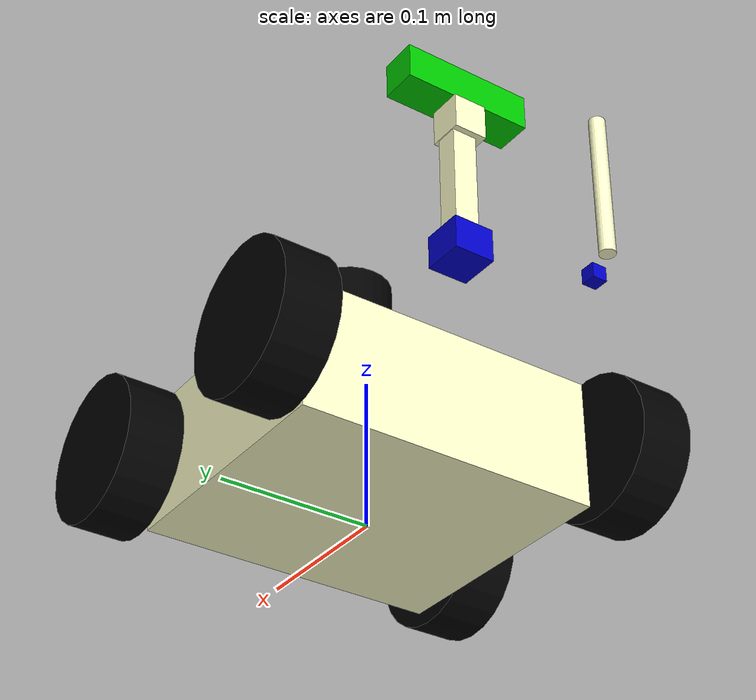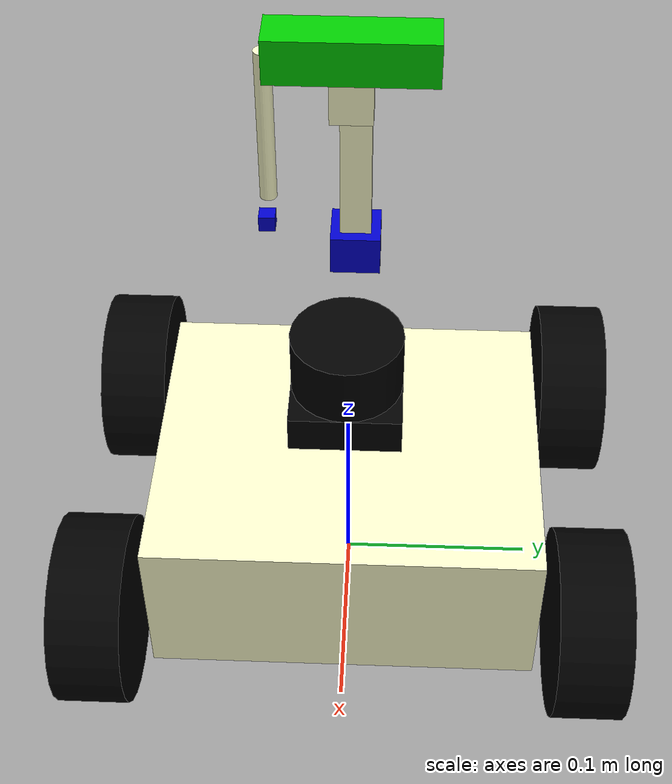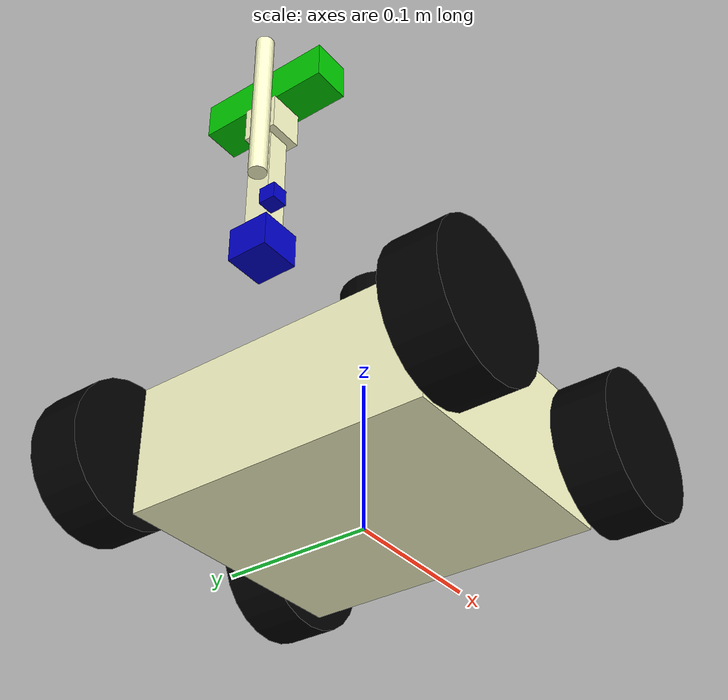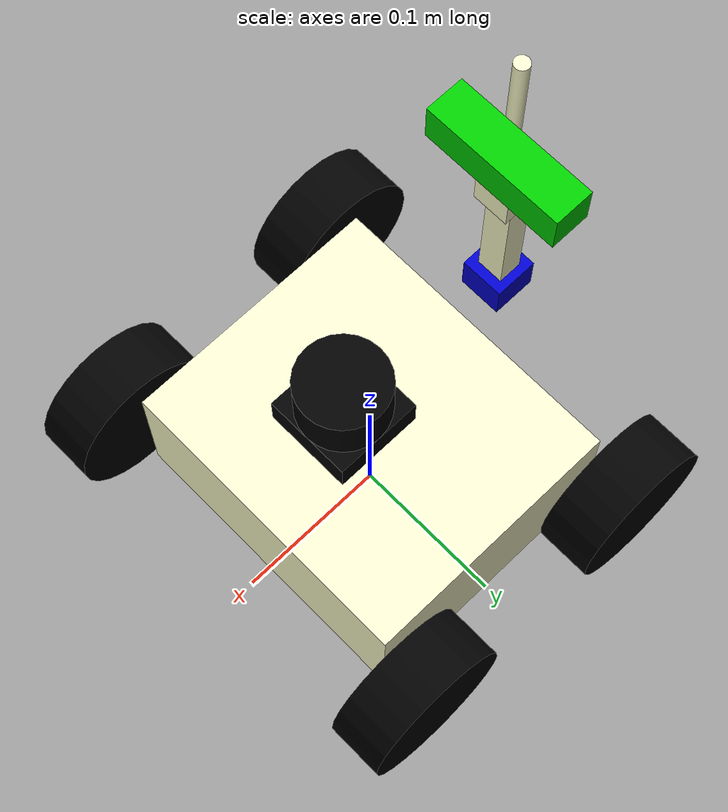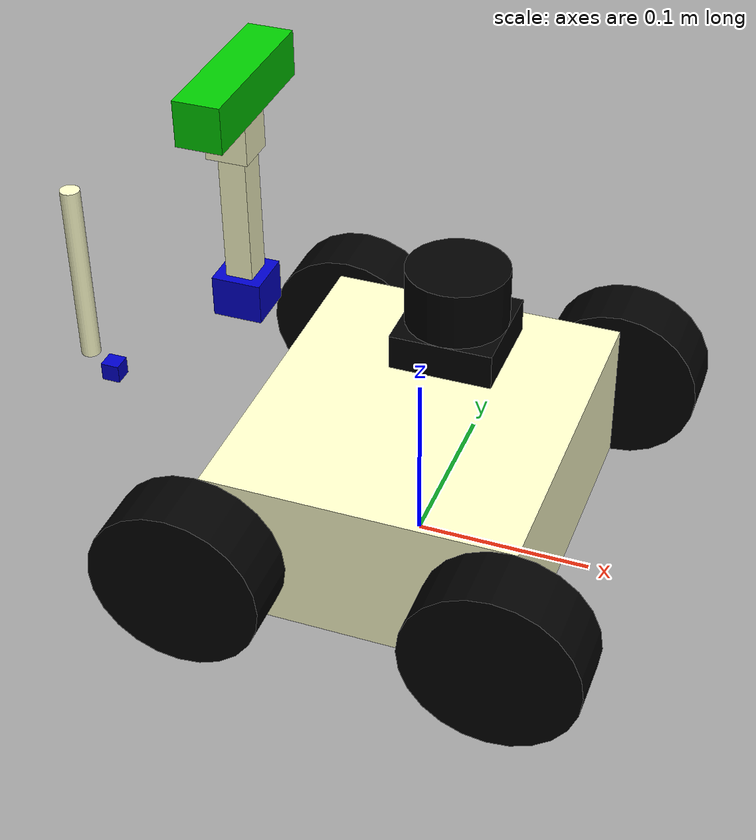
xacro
<?xml version="1.0" ?>
<!-- Modified URDF for rosbot_xl with corrected ros2_control for differential drive -->
<robot name="rosbot_xl">
  <!-- Define material colors -->
  <material name="blue">
    <color rgba="0 0 0.8 1"/>
  </material>
  <material name="white">
    <color rgba="1 1 0.8 1"/>
  </material>
  <material name="red">
    <color rgba="0.8 0 0 1"/>
  </material>
  <material name="green">
    <color rgba="0 0.8 0 1"/>
  </material>
  <material name="gray">
    <color rgba="0.5 0.5 0.5 1"/>
  </material>
  <material name="black">
    <color rgba="0 0 0 1"/>
  </material>

  <!-- Base link and body link definition -->
  <link name="base_footprint"/>
  <joint name="base_to_body_joint" type="fixed">
    <origin rpy="0.0 0.0 0.0" xyz="0.0 0.0 0.048"/>
    <parent link="base_footprint"/>
    <child link="base_link"/>
  </joint>

  <link name="base_link">
    <visual>
      <geometry>
        <box size="0.1725 0.2011 0.0855"/>
      </geometry>
      <material name="white"/>
      <origin rpy="0.0 0.0 0.0" xyz="0.0 0.0 0.0"/>
    </visual>
    <collision>
      <geometry>
        <box size="0.1725 0.2011 0.0855"/>
      </geometry>
      <origin rpy="0.0 0.0 0.0" xyz="0.0 0.0 0.0"/>
    </collision>
    <inertial>
      <mass value="3.5"/>
      <origin rpy="0.0 0.0 0.0" xyz="0.0 0.0 0.0358"/>
      <inertia ixx="0.01393" ixy="-0.000020968097" ixz="0.000010399694" iyy="0.01081" iyz="0.000059372953" izz="0.02048"/>
    </inertial>
  </link>

  <link name="cover_link"/>
  <joint name="body_to_cover_joint" type="fixed">
    <origin rpy="0.0 0.0 0.0" xyz="0.0 0.0 0.08345"/>
    <parent link="base_link"/>
    <child link="cover_link"/>
  </joint>

  <link name="imu_link"/>
  <joint name="body_to_imu_joint" type="fixed">
    <origin rpy="3.14159 0.0 0.0" xyz="-0.1369 -0.0419 0.0370"/>
    <parent link="base_link"/>
    <child link="imu_link"/>
  </joint>

  <!-- IMU Gazebo Plugin -->
  <gazebo reference="imu_link">
    <sensor name="imu_sensor" type="imu">
      <always_on>true</always_on>
      <update_rate>100.0</update_rate>
      <topic>imu/data</topic>
      <ignition_frame_id>imu_link</ignition_frame_id>
      <imu>
        <noise>
          <type>gaussian</type>
          <rate>
            <mean>0.0</mean>
            <stddev>0.0002</stddev>
          </rate>
          <accel>
            <mean>0.0</mean>
            <stddev>0.002</stddev>
          </accel>
        </noise>
      </imu>
    </sensor>
  </gazebo>

  <link name="fl_wheel_link">
    <visual>
      <geometry>
        <cylinder length="0.036" radius="0.048"/>
      </geometry>
      <material name="black"/>
      <origin rpy="1.5707963267948966 0.0 0.0" xyz="0.0 0.0 0.0"/>
    </visual>
    <collision>
      <geometry>
        <cylinder length="0.036" radius="0.048"/>
      </geometry>
      <origin rpy="1.5707963267948966 0.0 0.0" xyz="0.0 0.0 0.0"/>
    </collision>
    <inertial>
      <mass value="0.051"/>
      <inertia ixx="5.0587413e-05" ixy="0.0" ixz="0.0" iyy="8.5933192e-05" iyz="0.0" izz="5.0587829e-05"/>
    </inertial>
  </link>
  <joint name="fl_wheel_joint" type="continuous">
    <parent link="base_link"/>
    <child link="fl_wheel_link"/>
    <origin rpy="0.0 0.0 0.0" xyz="0.085 0.124 0.0"/>
    <axis xyz="0.0 1.0 0.0"/>
    <limit effort="1.5" velocity="30.0"/>
    <dynamics damping="0.001" friction="0.001"/>
  </joint>

  <link name="fr_wheel_link">
    <visual>
      <geometry>
        <cylinder length="0.036" radius="0.048"/>
      </geometry>
      <material name="black"/>
      <origin rpy="1.5707963267948966 0.0 0.0" xyz="0.0 0.0 0.0"/>
    </visual>
    <collision>
      <geometry>
        <cylinder length="0.036" radius="0.048"/>
      </geometry>
      <origin rpy="1.5707963267948966 0.0 0.0" xyz="0.0 0.0 0.0"/>
    </collision>
    <inertial>
      <mass value="0.051"/>
      <inertia ixx="5.0587413e-05" ixy="0.0" ixz="0.0" iyy="8.5933192e-05" iyz="0.0" izz="5.0587829e-05"/>
    </inertial>
  </link>
  <joint name="fr_wheel_joint" type="continuous">
    <parent link="base_link"/>
    <child link="fr_wheel_link"/>
    <origin rpy="0.0 0.0 0.0" xyz="0.085 -0.124 0.0"/>
    <axis xyz="0.0 1.0 0.0"/>
    <limit effort="1.5" velocity="30.0"/>
    <dynamics damping="0.001" friction="0.001"/>
  </joint>

  <link name="rl_wheel_link">
    <visual>
      <geometry>
        <cylinder length="0.036" radius="0.048"/>
      </geometry>
      <material name="black"/>
      <origin rpy="1.5707963267948966 0.0 0.0" xyz="0.0 0.0 0.0"/>
    </visual>
    <collision>
      <geometry>
        <cylinder length="0.036" radius="0.048"/>
      </geometry>
      <origin rpy="1.5707963267948966 0.0 0.0" xyz="0.0 0.0 0.0"/>
    </collision>
    <inertial>
      <mass value="0.051"/>
      <inertia ixx="5.0587413e-05" ixy="0.0" ixz="0.0" iyy="8.5933192e-05" iyz="0.0" izz="5.0587829e-05"/>
    </inertial>
  </link>
  <joint name="rl_wheel_joint" type="continuous">
    <parent link="base_link"/>
    <child link="rl_wheel_link"/>
    <origin rpy="0.0 0.0 0.0" xyz="-0.085 0.124 0.0"/>
    <axis xyz="0.0 1.0 0.0"/>
    <limit effort="1.5" velocity="30.0"/>
    <dynamics damping="0.001" friction="0.001"/>
  </joint>

  <link name="rr_wheel_link">
    <visual>
      <geometry>
        <cylinder length="0.036" radius="0.048"/>
      </geometry>
      <material name="black"/>
      <origin rpy="1.5707963267948966 0.0 0.0" xyz="0.0 0.0 0.0"/>
    </visual>
    <collision>
      <geometry>
        <cylinder length="0.036" radius="0.048"/>
      </geometry>
      <origin rpy="1.5707963267948966 0.0 0.0" xyz="0.0 0.0 0.0"/>
    </collision>
    <inertial>
      <mass value="0.051"/>
      <inertia ixx="5.0587413e-05" ixy="0.0" ixz="0.0" iyy="8.5933192e-05" iyz="0.0" izz="5.0587829e-05"/>
    </inertial>
  </link>
  <joint name="rr_wheel_joint" type="continuous">
    <parent link="base_link"/>
    <child link="rr_wheel_link"/>
    <origin rpy="0.0 0.0 0.0" xyz="-0.085 -0.124 0.0"/>
    <axis xyz="0.0 1.0 0.0"/>
    <limit effort="1.5" velocity="30.0"/>
    <dynamics damping="0.001" friction="0.001"/>
  </joint>

  <!-- ROS2 Control for Wheels -->
  <ros2_control name="IgnitionSystem" type="system">
    <hardware>
      <plugin>gz_ros2_control/GazeboSimSystem</plugin>
    </hardware>
    <joint name="fl_wheel_joint">
      <command_interface name="velocity">
        <param name="min">-20</param>
        <param name="max">20</param>
      </command_interface>
      <state_interface name="position"/>
      <state_interface name="velocity"/>
    </joint>
    <joint name="fr_wheel_joint">
      <command_interface name="velocity">
        <param name="min">-20</param>
        <param name="max">20</param>
      </command_interface>
      <state_interface name="position"/>
      <state_interface name="velocity"/>
    </joint>
    <joint name="rl_wheel_joint">
      <command_interface name="velocity">
        <param name="min">-20</param>
        <param name="max">20</param>
      </command_interface>
      <state_interface name="position"/>
      <state_interface name="velocity"/>
    </joint>
    <joint name="rr_wheel_joint">
      <command_interface name="velocity">
        <param name="min">-20</param>
        <param name="max">20</param>
      </command_interface>
      <state_interface name="position"/>
      <state_interface name="velocity"/>
    </joint>
  </ros2_control>

  <gazebo>
    <plugin filename="gz_ros2_control-system" name="gz_ros2_control::GazeboSimROS2ControlPlugin">
      <parameters>$(find testbot)/config/4w_diff_drive_controller_velocity.yaml</parameters>
    </plugin>
  </gazebo>

  <joint name="body_to_antenna_connector_joint" type="fixed">
    <origin rpy="0.0 0.0 0.0" xyz="-0.155 -0.055 0.065"/>
    <parent link="base_link"/>
    <child link="antenna_connector_link"/>
  </joint>
  <link name="antenna_connector_link">
    <visual>
      <geometry>
        <box size="0.01 0.01 0.01"/>
      </geometry>
      <material name="blue"/>
      <origin rpy="0.0 0.0 0.0" xyz="0.0 0.0 0.0"/>
    </visual>
  </link>
  <joint name="antenna_connector_to_antenna_joint" type="fixed">
    <origin rpy="0.0 0.0 0.0" xyz="-0.013 0.0 0.008"/>
    <parent link="antenna_connector_link"/>
    <child link="antenna_link"/>
  </joint>
  <link name="antenna_link">
    <visual>
      <geometry>
        <cylinder length="0.1" radius="0.0052"/>
      </geometry>
      <origin rpy="0.0 0.0 0.0" xyz="0.0 0.0 0.05"/>
      <material name="white"/>
    </visual>
    <collision>
      <geometry>
        <cylinder length="0.1" radius="0.0052"/>
      </geometry>
      <origin rpy="0.0 0.0 0.0" xyz="0.0 0.0 0.05"/>
    </collision>
  </link>

  <!-- LIDAR -->
  <joint name="cover_to_slamtec_rplidar_s1_joint" type="fixed">
    <origin rpy="0.0 0.0 0.0" xyz="0.02 0.0 0.0"/>
    <parent link="cover_link"/>
    <child link="slamtec_rplidar_s1_link"/>
  </joint>
  <link name="slamtec_rplidar_s1_link">
    <visual>
      <geometry>
        <cylinder length="0.051" radius="0.02775"/>
      </geometry>
      <material name="black"/>
      <origin rpy="0.0 0.0 0.0" xyz="0.0 0.0 0.0255"/>
    </visual>
    <visual>
      <geometry>
        <box size="0.0555 0.0555 0.0195"/>
      </geometry>
      <material name="black"/>
      <origin rpy="0.0 0.0 0.0" xyz="0.0 0.0 0.00975"/>
    </visual>
    <collision>
      <geometry>
        <cylinder length="0.051" radius="0.02775"/>
      </geometry>
      <origin rpy="0.0 0.0 0.0" xyz="0.0 0.0 0.0255"/>
    </collision>
    <collision>
      <geometry>
        <box size="0.0555 0.0555 0.0195"/>
      </geometry>
      <origin rpy="0.0 0.0 0.0" xyz="0.0 0.0 0.00975"/>
    </collision>
    <inertial>
      <origin rpy="0.0 0.0 0.0" xyz="0.0 0.0 0.02775"/>
      <mass value="0.105"/>
      <inertia ixx="0.000049654" ixy="0.0" ixz="0.0" iyy="0.000049654" iyz="0.0" izz="0.000053884"/>
    </inertial>
  </link>
  <joint name="slamtec_rplidar_s1_to_laser_joint" type="fixed">
    <origin rpy="0.0 0.0 3.141592653589793" xyz="0.0 0.0 0.04"/>
    <parent link="slamtec_rplidar_s1_link"/>
    <child link="laser"/>
  </joint>
  <link name="laser"/>
  <gazebo reference="laser">
    <sensor name="slamtec_rplidar_s1_sensor" type="gpu_lidar">
      <topic>scan</topic>
      <ignition_frame_id>laser</ignition_frame_id>
      <update_rate>10.0</update_rate>
      <ray>
        <scan>
          <horizontal>
            <samples>920</samples>
            <resolution>1</resolution>
            <min_angle>-3.141592653589793</min_angle>
            <max_angle>3.141592653589793</max_angle>
          </horizontal>
        </scan>
        <range>
          <min>0.04</min>
          <max>40.0</max>
          <resolution>0.03</resolution>
        </range>
        <noise>
          <type>gaussian</type>
          <mean>0.0</mean>
          <stddev>0.001</stddev>
        </noise>
      </ray>
      <always_on>true</always_on>
      <visualize>false</visualize>
    </sensor>
  </gazebo>

  <!-- CAMERA -->
  <joint name="camera_mount_to_camera_bottom_screw_joint" type="fixed">
    <origin rpy="0.0 0.0 0.0" xyz="0.0 0.0 0.0"/>
    <parent link="camera_mount_link"/>
    <child link="camera_bottom_screw_frame"/>
  </joint>
  <link name="camera_bottom_screw_frame"/>
  <joint name="camera_bottom_screw_to_camera_joint" type="fixed">
    <origin rpy="0.0 0.0 0.0" xyz="0.010600000000000002 0.0175 0.0125"/>
    <parent link="camera_bottom_screw_frame"/>
    <child link="camera_link"/>
  </joint>
  <link name="camera_link">
    <visual>
      <geometry>
        <box size="0.02505 0.09 0.025"/>
      </geometry>
      <material name="green"/>
      <origin rpy="0.0 0.0 0.0" xyz="-0.00824 -0.0175 0.0"/>
    </visual>
    <collision>
      <geometry>
        <box size="0.02505 0.09 0.025"/>
      </geometry>
      <origin rpy="0.0 0.0 0.0" xyz="-0.00824 -0.0175 0.0"/>
    </collision>
    <inertial>
      <mass value="0.072"/>
      <origin xyz="0.0 0.0 0.0"/>
      <inertia ixx="0.003881243" ixy="0.0" ixz="0.0" iyy="0.000498940" iyz="0.0" izz="0.003879257"/>
    </inertial>
  </link>
  <gazebo reference="camera_link">
    <sensor name="camera_intel_realsense_d435_color" type="camera">
      <always_on>true</always_on>
      <update_rate>30.0</update_rate>
      <topic>camera/color/image_raw</topic>
      <visualize>false</visualize>
      <ignition_frame_id>camera_color_optical_frame</ignition_frame_id>
      <horizontal_fov>1.2042771838760875</horizontal_fov>
      <image>
        <width>1280</width>
        <height>720</height>
        <format>R8G8B8</format>
      </image>
      <clip>
        <near>0.02</near>
        <far>300.0</far>
      </clip>
    </sensor>
    <sensor name="camera_intel_realsense_d435_depth" type="depth_camera">
      <always_on>true</always_on>
      <update_rate>30.0</update_rate>
      <topic>camera/depth/image_rect_raw</topic>
      <visualize>false</visualize>
      <ignition_frame_id>camera_depth_optical_frame</ignition_frame_id>
      <camera>
        <horizontal_fov>1.5184364492350666</horizontal_fov>
        <image>
          <width>1280</width>
          <height>720</height>
          <format>R_FLOAT32</format>
        </image>
        <clip>
          <near>0.28</near>
          <far>8.0</far>
        </clip>
        <noise>
          <type>gaussian</type>
          <mean>0.0</mean>
          <stddev>0.005</stddev>
        </noise>
      </camera>
    </sensor>
  </gazebo>

  <!-- CAMERA MOUNT -->
  <joint name="cover_to_camera_mount_bot_joint" type="fixed">
    <origin rpy="0.0 0.0 0.0" xyz="-0.1 0.0 0.0"/>
    <parent link="cover_link"/>
    <child link="camera_mount_bot_link"/>
  </joint>
  <link name="camera_mount_bot_link">
    <visual>
      <geometry>
        <box size="0.0275 0.0275 0.023"/>
      </geometry>
      <material name="blue"/>
      <origin rpy="0.0 0.0 0.0" xyz="0.0 0.0 0.0115"/>
    </visual>
    <collision>
      <geometry>
        <box size="0.0275 0.0275 0.023"/>
      </geometry>
      <origin rpy="0.0 0.0 0.0" xyz="0.0 0.0 0.0115"/>
    </collision>
  </link>
  <joint name="camera_mount_bot_to_camera_mount_mid_joint" type="fixed">
    <origin rpy="0.0 0.0 0.0" xyz="0.0 0.0 0.016"/>
    <parent link="camera_mount_bot_link"/>
    <child link="camera_mount_mid_link"/>
  </joint>
  <link name="camera_mount_mid_link">
    <visual>
      <geometry>
        <box size="0.015 0.017 0.101"/>
      </geometry>
      <material name="white"/>
      <origin rpy="0.0 0.0 0.0" xyz="0.0 0.0 0.0425"/>
    </visual>
    <collision>
      <geometry>
        <box size="0.015 0.017 0.101"/>
      </geometry>
      <origin rpy="0.0 0.0 0.0" xyz="0.0 0.0 0.0425"/>
    </collision>
  </link>
  <joint name="camera_mount_mid_to_camera_mount_top_joint" type="fixed">
    <origin rpy="0.0 0.0 0.0" xyz="0.0 0.0 0.086"/>
    <parent link="camera_mount_mid_link"/>
    <child link="camera_mount_top_link"/>
  </joint>
  <link name="camera_mount_top_link">
    <visual>
      <geometry>
        <box size="0.023 0.023 0.025"/>
      </geometry>
      <material name="white"/>
      <origin rpy="0.0 0.0 0.0" xyz="0.0 -0.00232 0.0065"/>
    </visual>
    <collision>
      <geometry>
        <box size="0.023 0.023 0.025"/>
      </geometry>
      <origin rpy="0.0 0.0 0.0" xyz="0.0 -0.00232 0.0065"/>
    </collision>
  </link>
  <joint name="camera_mount_top_to_camera_mount_joint" type="fixed">
    <origin rpy="0.0 0.0 0.0" xyz="0.0 -0.00232 0.019"/>
    <parent link="camera_mount_top_link"/>
    <child link="camera_mount_link"/>
  </joint>
  <link name="camera_mount_link"/>
</robot>
